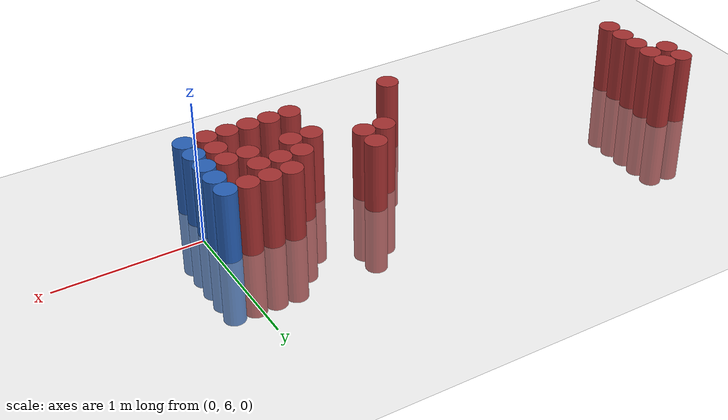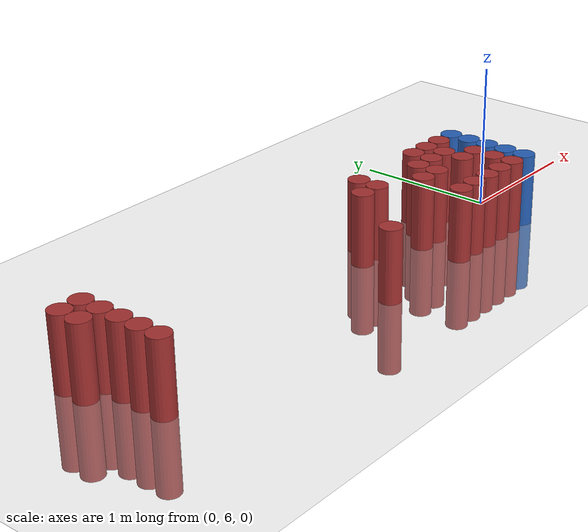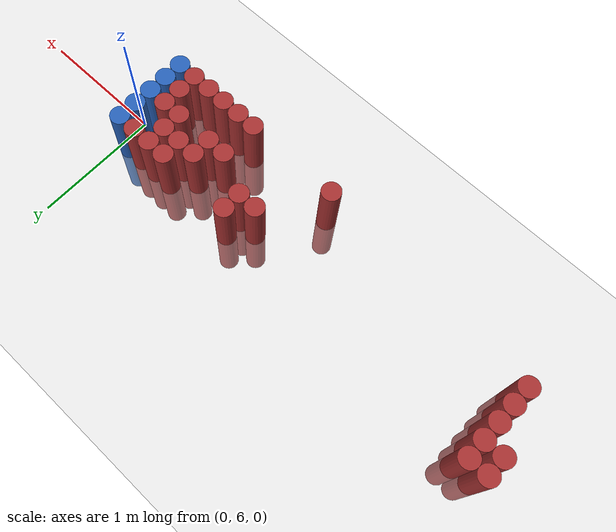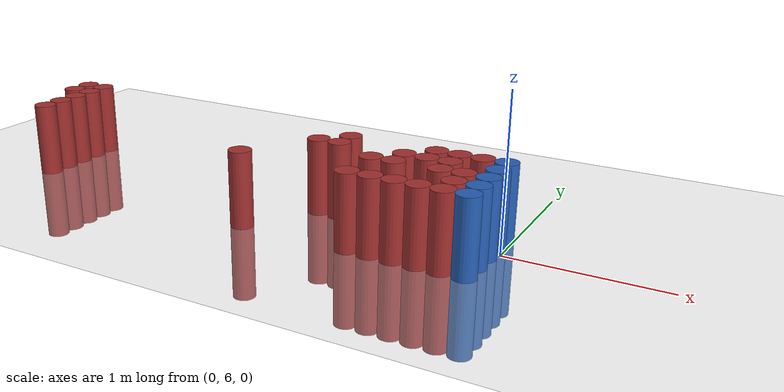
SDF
<sdf version="1.6">
 <world name="default">
  <model name="ground_plane">
   <static>1</static>
   <link name="link">
    <collision name="collision">
     <geometry><plane><normal>0 0 1</normal><size>100 100</size></plane></geometry>
     <surface><friction><ode><mu>100</mu><mu2>50</mu2></ode></friction></surface>
    </collision>
    <visual name="visual">
     <cast_shadows>0</cast_shadows>
     <geometry><plane><normal>0 0 1</normal><size>100 100</size></plane></geometry>
     <material>
      <script><uri>file://media/materials/scripts/gazebo.material</uri><name>Gazebo/Grey</name></script>
     </material>
    </visual>
   </link>
  </model>
  <model name="unit_cylinder_169">
   <static>1</static>
   <pose>-3.525000 6.225000 0.000000 0.000000 0.000000 0.000000</pose>
   <link name="link">
    <inertial>
     <mass>1</mass>
     <inertia><ixx>0.145833</ixx><ixy>0</ixy><ixz>0</ixz><iyy>0.145833</iyy><iyz>0</iyz><izz>0.125</izz></inertia>
    </inertial>
    <collision name="collision">
     <geometry><cylinder><radius>0.075000</radius><length>1</length></cylinder></geometry>
    </collision>
    <visual name="visual">
     <geometry><cylinder><radius>0.075000</radius><length>1</length></cylinder></geometry>
     <material>
      <ambient>0.648000 0.192000 0.192000 1</ambient>
      <diffuse>0.648000 0.192000 0.192000 1</diffuse>
     </material>
     <material>
      <script><name>Gazebo/Grey</name><uri>file://media/materials/scripts/gazebo.material</uri></script>
     </material>
    </visual>
    <sensor name="sensor_contact" type="contact"><contact><collision>collision</collision></contact></sensor>
   </link>
   <plugin filename="gz-sim-touchplugin-system" name="gz::sim::systems::TouchPlugin">
    <target>robot</target>
    <namespace>robot</namespace>
    <time>0.001</time>
    <enabled>true</enabled>
   </plugin>
  </model>
  <model name="unit_cylinder_170">
   <static>1</static>
   <pose>-3.525000 6.375000 0.000000 0.000000 0.000000 0.000000</pose>
   <link name="link">
    <inertial>
     <mass>1</mass>
     <inertia><ixx>0.145833</ixx><ixy>0</ixy><ixz>0</ixz><iyy>0.145833</iyy><iyz>0</iyz><izz>0.125</izz></inertia>
    </inertial>
    <collision name="collision">
     <geometry><cylinder><radius>0.075000</radius><length>1</length></cylinder></geometry>
    </collision>
    <visual name="visual">
     <geometry><cylinder><radius>0.075000</radius><length>1</length></cylinder></geometry>
     <material>
      <ambient>0.648000 0.192000 0.192000 1</ambient>
      <diffuse>0.648000 0.192000 0.192000 1</diffuse>
     </material>
     <material>
      <script><name>Gazebo/Grey</name><uri>file://media/materials/scripts/gazebo.material</uri></script>
     </material>
    </visual>
    <sensor name="sensor_contact" type="contact"><contact><collision>collision</collision></contact></sensor>
   </link>
   <plugin filename="gz-sim-touchplugin-system" name="gz::sim::systems::TouchPlugin">
    <target>robot</target>
    <namespace>robot</namespace>
    <time>0.001</time>
    <enabled>true</enabled>
   </plugin>
  </model>
  <model name="unit_cylinder_172">
   <static>1</static>
   <pose>-3.375000 5.775000 0.000000 0.000000 0.000000 0.000000</pose>
   <link name="link">
    <inertial>
     <mass>1</mass>
     <inertia><ixx>0.145833</ixx><ixy>0</ixy><ixz>0</ixz><iyy>0.145833</iyy><iyz>0</iyz><izz>0.125</izz></inertia>
    </inertial>
    <collision name="collision">
     <geometry><cylinder><radius>0.075000</radius><length>1</length></cylinder></geometry>
    </collision>
    <visual name="visual">
     <geometry><cylinder><radius>0.075000</radius><length>1</length></cylinder></geometry>
     <material>
      <ambient>0.648000 0.192000 0.192000 1</ambient>
      <diffuse>0.648000 0.192000 0.192000 1</diffuse>
     </material>
     <material>
      <script><name>Gazebo/Grey</name><uri>file://media/materials/scripts/gazebo.material</uri></script>
     </material>
    </visual>
    <sensor name="sensor_contact" type="contact"><contact><collision>collision</collision></contact></sensor>
   </link>
   <plugin filename="gz-sim-touchplugin-system" name="gz::sim::systems::TouchPlugin">
    <target>robot</target>
    <namespace>robot</namespace>
    <time>0.001</time>
    <enabled>true</enabled>
   </plugin>
  </model>
  <model name="unit_cylinder_173">
   <static>1</static>
   <pose>-3.375000 5.925000 0.000000 0.000000 0.000000 0.000000</pose>
   <link name="link">
    <inertial>
     <mass>1</mass>
     <inertia><ixx>0.145833</ixx><ixy>0</ixy><ixz>0</ixz><iyy>0.145833</iyy><iyz>0</iyz><izz>0.125</izz></inertia>
    </inertial>
    <collision name="collision">
     <geometry><cylinder><radius>0.075000</radius><length>1</length></cylinder></geometry>
    </collision>
    <visual name="visual">
     <geometry><cylinder><radius>0.075000</radius><length>1</length></cylinder></geometry>
     <material>
      <ambient>0.648000 0.192000 0.192000 1</ambient>
      <diffuse>0.648000 0.192000 0.192000 1</diffuse>
     </material>
     <material>
      <script><name>Gazebo/Grey</name><uri>file://media/materials/scripts/gazebo.material</uri></script>
     </material>
    </visual>
    <sensor name="sensor_contact" type="contact"><contact><collision>collision</collision></contact></sensor>
   </link>
   <plugin filename="gz-sim-touchplugin-system" name="gz::sim::systems::TouchPlugin">
    <target>robot</target>
    <namespace>robot</namespace>
    <time>0.001</time>
    <enabled>true</enabled>
   </plugin>
  </model>
  <model name="unit_cylinder_174">
   <static>1</static>
   <pose>-3.375000 6.075000 0.000000 0.000000 0.000000 0.000000</pose>
   <link name="link">
    <inertial>
     <mass>1</mass>
     <inertia><ixx>0.145833</ixx><ixy>0</ixy><ixz>0</ixz><iyy>0.145833</iyy><iyz>0</iyz><izz>0.125</izz></inertia>
    </inertial>
    <collision name="collision">
     <geometry><cylinder><radius>0.075000</radius><length>1</length></cylinder></geometry>
    </collision>
    <visual name="visual">
     <geometry><cylinder><radius>0.075000</radius><length>1</length></cylinder></geometry>
     <material>
      <ambient>0.648000 0.192000 0.192000 1</ambient>
      <diffuse>0.648000 0.192000 0.192000 1</diffuse>
     </material>
     <material>
      <script><name>Gazebo/Grey</name><uri>file://media/materials/scripts/gazebo.material</uri></script>
     </material>
    </visual>
    <sensor name="sensor_contact" type="contact"><contact><collision>collision</collision></contact></sensor>
   </link>
   <plugin filename="gz-sim-touchplugin-system" name="gz::sim::systems::TouchPlugin">
    <target>robot</target>
    <namespace>robot</namespace>
    <time>0.001</time>
    <enabled>true</enabled>
   </plugin>
  </model>
  <model name="unit_cylinder_175">
   <static>1</static>
   <pose>-3.375000 6.225000 0.000000 0.000000 0.000000 0.000000</pose>
   <link name="link">
    <inertial>
     <mass>1</mass>
     <inertia><ixx>0.145833</ixx><ixy>0</ixy><ixz>0</ixz><iyy>0.145833</iyy><iyz>0</iyz><izz>0.125</izz></inertia>
    </inertial>
    <collision name="collision">
     <geometry><cylinder><radius>0.075000</radius><length>1</length></cylinder></geometry>
    </collision>
    <visual name="visual">
     <geometry><cylinder><radius>0.075000</radius><length>1</length></cylinder></geometry>
     <material>
      <ambient>0.648000 0.192000 0.192000 1</ambient>
      <diffuse>0.648000 0.192000 0.192000 1</diffuse>
     </material>
     <material>
      <script><name>Gazebo/Grey</name><uri>file://media/materials/scripts/gazebo.material</uri></script>
     </material>
    </visual>
    <sensor name="sensor_contact" type="contact"><contact><collision>collision</collision></contact></sensor>
   </link>
   <plugin filename="gz-sim-touchplugin-system" name="gz::sim::systems::TouchPlugin">
    <target>robot</target>
    <namespace>robot</namespace>
    <time>0.001</time>
    <enabled>true</enabled>
   </plugin>
  </model>
  <model name="unit_cylinder_176">
   <static>1</static>
   <pose>-3.375000 6.375000 0.000000 0.000000 0.000000 0.000000</pose>
   <link name="link">
    <inertial>
     <mass>1</mass>
     <inertia><ixx>0.145833</ixx><ixy>0</ixy><ixz>0</ixz><iyy>0.145833</iyy><iyz>0</iyz><izz>0.125</izz></inertia>
    </inertial>
    <collision name="collision">
     <geometry><cylinder><radius>0.075000</radius><length>1</length></cylinder></geometry>
    </collision>
    <visual name="visual">
     <geometry><cylinder><radius>0.075000</radius><length>1</length></cylinder></geometry>
     <material>
      <ambient>0.648000 0.192000 0.192000 1</ambient>
      <diffuse>0.648000 0.192000 0.192000 1</diffuse>
     </material>
     <material>
      <script><name>Gazebo/Grey</name><uri>file://media/materials/scripts/gazebo.material</uri></script>
     </material>
    </visual>
    <sensor name="sensor_contact" type="contact"><contact><collision>collision</collision></contact></sensor>
   </link>
   <plugin filename="gz-sim-touchplugin-system" name="gz::sim::systems::TouchPlugin">
    <target>robot</target>
    <namespace>robot</namespace>
    <time>0.001</time>
    <enabled>true</enabled>
   </plugin>
  </model>
  <model name="unit_cylinder_219">
   <static>1</static>
   <pose>-1.575000 5.625000 0.000000 0.000000 0.000000 0.000000</pose>
   <link name="link">
    <inertial>
     <mass>1</mass>
     <inertia><ixx>0.145833</ixx><ixy>0</ixy><ixz>0</ixz><iyy>0.145833</iyy><iyz>0</iyz><izz>0.125</izz></inertia>
    </inertial>
    <collision name="collision">
     <geometry><cylinder><radius>0.075000</radius><length>1</length></cylinder></geometry>
    </collision>
    <visual name="visual">
     <geometry><cylinder><radius>0.075000</radius><length>1</length></cylinder></geometry>
     <material>
      <ambient>0.648000 0.192000 0.192000 1</ambient>
      <diffuse>0.648000 0.192000 0.192000 1</diffuse>
     </material>
     <material>
      <script><name>Gazebo/Grey</name><uri>file://media/materials/scripts/gazebo.material</uri></script>
     </material>
    </visual>
    <sensor name="sensor_contact" type="contact"><contact><collision>collision</collision></contact></sensor>
   </link>
   <plugin filename="gz-sim-touchplugin-system" name="gz::sim::systems::TouchPlugin">
    <target>robot</target>
    <namespace>robot</namespace>
    <time>0.001</time>
    <enabled>true</enabled>
   </plugin>
  </model>
  <model name="unit_cylinder_221">
   <static>1</static>
   <pose>-1.275000 6.075000 0.000000 0.000000 0.000000 0.000000</pose>
   <link name="link">
    <inertial>
     <mass>1</mass>
     <inertia><ixx>0.145833</ixx><ixy>0</ixy><ixz>0</ixz><iyy>0.145833</iyy><iyz>0</iyz><izz>0.125</izz></inertia>
    </inertial>
    <collision name="collision">
     <geometry><cylinder><radius>0.075000</radius><length>1</length></cylinder></geometry>
    </collision>
    <visual name="visual">
     <geometry><cylinder><radius>0.075000</radius><length>1</length></cylinder></geometry>
     <material>
      <ambient>0.648000 0.192000 0.192000 1</ambient>
      <diffuse>0.648000 0.192000 0.192000 1</diffuse>
     </material>
     <material>
      <script><name>Gazebo/Grey</name><uri>file://media/materials/scripts/gazebo.material</uri></script>
     </material>
    </visual>
    <sensor name="sensor_contact" type="contact"><contact><collision>collision</collision></contact></sensor>
   </link>
   <plugin filename="gz-sim-touchplugin-system" name="gz::sim::systems::TouchPlugin">
    <target>robot</target>
    <namespace>robot</namespace>
    <time>0.001</time>
    <enabled>true</enabled>
   </plugin>
  </model>
  <model name="unit_cylinder_222">
   <static>1</static>
   <pose>-1.125000 6.075000 0.000000 0.000000 0.000000 0.000000</pose>
   <link name="link">
    <inertial>
     <mass>1</mass>
     <inertia><ixx>0.145833</ixx><ixy>0</ixy><ixz>0</ixz><iyy>0.145833</iyy><iyz>0</iyz><izz>0.125</izz></inertia>
    </inertial>
    <collision name="collision">
     <geometry><cylinder><radius>0.075000</radius><length>1</length></cylinder></geometry>
    </collision>
    <visual name="visual">
     <geometry><cylinder><radius>0.075000</radius><length>1</length></cylinder></geometry>
     <material>
      <ambient>0.648000 0.192000 0.192000 1</ambient>
      <diffuse>0.648000 0.192000 0.192000 1</diffuse>
     </material>
     <material>
      <script><name>Gazebo/Grey</name><uri>file://media/materials/scripts/gazebo.material</uri></script>
     </material>
    </visual>
    <sensor name="sensor_contact" type="contact"><contact><collision>collision</collision></contact></sensor>
   </link>
   <plugin filename="gz-sim-touchplugin-system" name="gz::sim::systems::TouchPlugin">
    <target>robot</target>
    <namespace>robot</namespace>
    <time>0.001</time>
    <enabled>true</enabled>
   </plugin>
  </model>
  <model name="unit_cylinder_223">
   <static>1</static>
   <pose>-1.125000 6.225000 0.000000 0.000000 0.000000 0.000000</pose>
   <link name="link">
    <inertial>
     <mass>1</mass>
     <inertia><ixx>0.145833</ixx><ixy>0</ixy><ixz>0</ixz><iyy>0.145833</iyy><iyz>0</iyz><izz>0.125</izz></inertia>
    </inertial>
    <collision name="collision">
     <geometry><cylinder><radius>0.075000</radius><length>1</length></cylinder></geometry>
    </collision>
    <visual name="visual">
     <geometry><cylinder><radius>0.075000</radius><length>1</length></cylinder></geometry>
     <material>
      <ambient>0.648000 0.192000 0.192000 1</ambient>
      <diffuse>0.648000 0.192000 0.192000 1</diffuse>
     </material>
     <material>
      <script><name>Gazebo/Grey</name><uri>file://media/materials/scripts/gazebo.material</uri></script>
     </material>
    </visual>
    <sensor name="sensor_contact" type="contact"><contact><collision>collision</collision></contact></sensor>
   </link>
   <plugin filename="gz-sim-touchplugin-system" name="gz::sim::systems::TouchPlugin">
    <target>robot</target>
    <namespace>robot</namespace>
    <time>0.001</time>
    <enabled>true</enabled>
   </plugin>
  </model>
  <model name="unit_cylinder_235">
   <static>1</static>
   <pose>-0.825000 5.625000 0.000000 0.000000 0.000000 0.000000</pose>
   <link name="link">
    <inertial>
     <mass>1</mass>
     <inertia><ixx>0.145833</ixx><ixy>0</ixy><ixz>0</ixz><iyy>0.145833</iyy><iyz>0</iyz><izz>0.125</izz></inertia>
    </inertial>
    <collision name="collision">
     <geometry><cylinder><radius>0.075000</radius><length>1</length></cylinder></geometry>
    </collision>
    <visual name="visual">
     <geometry><cylinder><radius>0.075000</radius><length>1</length></cylinder></geometry>
     <material>
      <ambient>0.648000 0.192000 0.192000 1</ambient>
      <diffuse>0.648000 0.192000 0.192000 1</diffuse>
     </material>
     <material>
      <script><name>Gazebo/Grey</name><uri>file://media/materials/scripts/gazebo.material</uri></script>
     </material>
    </visual>
    <sensor name="sensor_contact" type="contact"><contact><collision>collision</collision></contact></sensor>
   </link>
   <plugin filename="gz-sim-touchplugin-system" name="gz::sim::systems::TouchPlugin">
    <target>robot</target>
    <namespace>robot</namespace>
    <time>0.001</time>
    <enabled>true</enabled>
   </plugin>
  </model>
  <model name="unit_cylinder_236">
   <static>1</static>
   <pose>-0.825000 5.925000 0.000000 0.000000 0.000000 0.000000</pose>
   <link name="link">
    <inertial>
     <mass>1</mass>
     <inertia><ixx>0.145833</ixx><ixy>0</ixy><ixz>0</ixz><iyy>0.145833</iyy><iyz>0</iyz><izz>0.125</izz></inertia>
    </inertial>
    <collision name="collision">
     <geometry><cylinder><radius>0.075000</radius><length>1</length></cylinder></geometry>
    </collision>
    <visual name="visual">
     <geometry><cylinder><radius>0.075000</radius><length>1</length></cylinder></geometry>
     <material>
      <ambient>0.648000 0.192000 0.192000 1</ambient>
      <diffuse>0.648000 0.192000 0.192000 1</diffuse>
     </material>
     <material>
      <script><name>Gazebo/Grey</name><uri>file://media/materials/scripts/gazebo.material</uri></script>
     </material>
    </visual>
    <sensor name="sensor_contact" type="contact"><contact><collision>collision</collision></contact></sensor>
   </link>
   <plugin filename="gz-sim-touchplugin-system" name="gz::sim::systems::TouchPlugin">
    <target>robot</target>
    <namespace>robot</namespace>
    <time>0.001</time>
    <enabled>true</enabled>
   </plugin>
  </model>
  <model name="unit_cylinder_246">
   <static>1</static>
   <pose>-0.675000 5.625000 0.000000 0.000000 0.000000 0.000000</pose>
   <link name="link">
    <inertial>
     <mass>1</mass>
     <inertia><ixx>0.145833</ixx><ixy>0</ixy><ixz>0</ixz><iyy>0.145833</iyy><iyz>0</iyz><izz>0.125</izz></inertia>
    </inertial>
    <collision name="collision">
     <geometry><cylinder><radius>0.075000</radius><length>1</length></cylinder></geometry>
    </collision>
    <visual name="visual">
     <geometry><cylinder><radius>0.075000</radius><length>1</length></cylinder></geometry>
     <material>
      <ambient>0.648000 0.192000 0.192000 1</ambient>
      <diffuse>0.648000 0.192000 0.192000 1</diffuse>
     </material>
     <material>
      <script><name>Gazebo/Grey</name><uri>file://media/materials/scripts/gazebo.material</uri></script>
     </material>
    </visual>
    <sensor name="sensor_contact" type="contact"><contact><collision>collision</collision></contact></sensor>
   </link>
   <plugin filename="gz-sim-touchplugin-system" name="gz::sim::systems::TouchPlugin">
    <target>robot</target>
    <namespace>robot</namespace>
    <time>0.001</time>
    <enabled>true</enabled>
   </plugin>
  </model>
  <model name="unit_cylinder_247">
   <static>1</static>
   <pose>-0.675000 5.925000 0.000000 0.000000 0.000000 0.000000</pose>
   <link name="link">
    <inertial>
     <mass>1</mass>
     <inertia><ixx>0.145833</ixx><ixy>0</ixy><ixz>0</ixz><iyy>0.145833</iyy><iyz>0</iyz><izz>0.125</izz></inertia>
    </inertial>
    <collision name="collision">
     <geometry><cylinder><radius>0.075000</radius><length>1</length></cylinder></geometry>
    </collision>
    <visual name="visual">
     <geometry><cylinder><radius>0.075000</radius><length>1</length></cylinder></geometry>
     <material>
      <ambient>0.648000 0.192000 0.192000 1</ambient>
      <diffuse>0.648000 0.192000 0.192000 1</diffuse>
     </material>
     <material>
      <script><name>Gazebo/Grey</name><uri>file://media/materials/scripts/gazebo.material</uri></script>
     </material>
    </visual>
    <sensor name="sensor_contact" type="contact"><contact><collision>collision</collision></contact></sensor>
   </link>
   <plugin filename="gz-sim-touchplugin-system" name="gz::sim::systems::TouchPlugin">
    <target>robot</target>
    <namespace>robot</namespace>
    <time>0.001</time>
    <enabled>true</enabled>
   </plugin>
  </model>
  <model name="unit_cylinder_248">
   <static>1</static>
   <pose>-0.675000 6.075000 0.000000 0.000000 0.000000 0.000000</pose>
   <link name="link">
    <inertial>
     <mass>1</mass>
     <inertia><ixx>0.145833</ixx><ixy>0</ixy><ixz>0</ixz><iyy>0.145833</iyy><iyz>0</iyz><izz>0.125</izz></inertia>
    </inertial>
    <collision name="collision">
     <geometry><cylinder><radius>0.075000</radius><length>1</length></cylinder></geometry>
    </collision>
    <visual name="visual">
     <geometry><cylinder><radius>0.075000</radius><length>1</length></cylinder></geometry>
     <material>
      <ambient>0.648000 0.192000 0.192000 1</ambient>
      <diffuse>0.648000 0.192000 0.192000 1</diffuse>
     </material>
     <material>
      <script><name>Gazebo/Grey</name><uri>file://media/materials/scripts/gazebo.material</uri></script>
     </material>
    </visual>
    <sensor name="sensor_contact" type="contact"><contact><collision>collision</collision></contact></sensor>
   </link>
   <plugin filename="gz-sim-touchplugin-system" name="gz::sim::systems::TouchPlugin">
    <target>robot</target>
    <namespace>robot</namespace>
    <time>0.001</time>
    <enabled>true</enabled>
   </plugin>
  </model>
  <model name="unit_cylinder_258">
   <static>1</static>
   <pose>-0.525000 5.625000 0.000000 0.000000 0.000000 0.000000</pose>
   <link name="link">
    <inertial>
     <mass>1</mass>
     <inertia><ixx>0.145833</ixx><ixy>0</ixy><ixz>0</ixz><iyy>0.145833</iyy><iyz>0</iyz><izz>0.125</izz></inertia>
    </inertial>
    <collision name="collision">
     <geometry><cylinder><radius>0.075000</radius><length>1</length></cylinder></geometry>
    </collision>
    <visual name="visual">
     <geometry><cylinder><radius>0.075000</radius><length>1</length></cylinder></geometry>
     <material>
      <ambient>0.648000 0.192000 0.192000 1</ambient>
      <diffuse>0.648000 0.192000 0.192000 1</diffuse>
     </material>
     <material>
      <script><name>Gazebo/Grey</name><uri>file://media/materials/scripts/gazebo.material</uri></script>
     </material>
    </visual>
    <sensor name="sensor_contact" type="contact"><contact><collision>collision</collision></contact></sensor>
   </link>
   <plugin filename="gz-sim-touchplugin-system" name="gz::sim::systems::TouchPlugin">
    <target>robot</target>
    <namespace>robot</namespace>
    <time>0.001</time>
    <enabled>true</enabled>
   </plugin>
  </model>
  <model name="unit_cylinder_259">
   <static>1</static>
   <pose>-0.525000 6.075000 0.000000 0.000000 0.000000 0.000000</pose>
   <link name="link">
    <inertial>
     <mass>1</mass>
     <inertia><ixx>0.145833</ixx><ixy>0</ixy><ixz>0</ixz><iyy>0.145833</iyy><iyz>0</iyz><izz>0.125</izz></inertia>
    </inertial>
    <collision name="collision">
     <geometry><cylinder><radius>0.075000</radius><length>1</length></cylinder></geometry>
    </collision>
    <visual name="visual">
     <geometry><cylinder><radius>0.075000</radius><length>1</length></cylinder></geometry>
     <material>
      <ambient>0.648000 0.192000 0.192000 1</ambient>
      <diffuse>0.648000 0.192000 0.192000 1</diffuse>
     </material>
     <material>
      <script><name>Gazebo/Grey</name><uri>file://media/materials/scripts/gazebo.material</uri></script>
     </material>
    </visual>
    <sensor name="sensor_contact" type="contact"><contact><collision>collision</collision></contact></sensor>
   </link>
   <plugin filename="gz-sim-touchplugin-system" name="gz::sim::systems::TouchPlugin">
    <target>robot</target>
    <namespace>robot</namespace>
    <time>0.001</time>
    <enabled>true</enabled>
   </plugin>
  </model>
  <model name="unit_cylinder_260">
   <static>1</static>
   <pose>-0.525000 6.225000 0.000000 0.000000 0.000000 0.000000</pose>
   <link name="link">
    <inertial>
     <mass>1</mass>
     <inertia><ixx>0.145833</ixx><ixy>0</ixy><ixz>0</ixz><iyy>0.145833</iyy><iyz>0</iyz><izz>0.125</izz></inertia>
    </inertial>
    <collision name="collision">
     <geometry><cylinder><radius>0.075000</radius><length>1</length></cylinder></geometry>
    </collision>
    <visual name="visual">
     <geometry><cylinder><radius>0.075000</radius><length>1</length></cylinder></geometry>
     <material>
      <ambient>0.648000 0.192000 0.192000 1</ambient>
      <diffuse>0.648000 0.192000 0.192000 1</diffuse>
     </material>
     <material>
      <script><name>Gazebo/Grey</name><uri>file://media/materials/scripts/gazebo.material</uri></script>
     </material>
    </visual>
    <sensor name="sensor_contact" type="contact"><contact><collision>collision</collision></contact></sensor>
   </link>
   <plugin filename="gz-sim-touchplugin-system" name="gz::sim::systems::TouchPlugin">
    <target>robot</target>
    <namespace>robot</namespace>
    <time>0.001</time>
    <enabled>true</enabled>
   </plugin>
  </model>
  <model name="unit_cylinder_267">
   <static>1</static>
   <pose>-0.375000 5.625000 0.000000 0.000000 0.000000 0.000000</pose>
   <link name="link">
    <inertial>
     <mass>1</mass>
     <inertia><ixx>0.145833</ixx><ixy>0</ixy><ixz>0</ixz><iyy>0.145833</iyy><iyz>0</iyz><izz>0.125</izz></inertia>
    </inertial>
    <collision name="collision">
     <geometry><cylinder><radius>0.075000</radius><length>1</length></cylinder></geometry>
    </collision>
    <visual name="visual">
     <geometry><cylinder><radius>0.075000</radius><length>1</length></cylinder></geometry>
     <material>
      <ambient>0.648000 0.192000 0.192000 1</ambient>
      <diffuse>0.648000 0.192000 0.192000 1</diffuse>
     </material>
     <material>
      <script><name>Gazebo/Grey</name><uri>file://media/materials/scripts/gazebo.material</uri></script>
     </material>
    </visual>
    <sensor name="sensor_contact" type="contact"><contact><collision>collision</collision></contact></sensor>
   </link>
   <plugin filename="gz-sim-touchplugin-system" name="gz::sim::systems::TouchPlugin">
    <target>robot</target>
    <namespace>robot</namespace>
    <time>0.001</time>
    <enabled>true</enabled>
   </plugin>
  </model>
  <model name="unit_cylinder_268">
   <static>1</static>
   <pose>-0.375000 5.925000 0.000000 0.000000 0.000000 0.000000</pose>
   <link name="link">
    <inertial>
     <mass>1</mass>
     <inertia><ixx>0.145833</ixx><ixy>0</ixy><ixz>0</ixz><iyy>0.145833</iyy><iyz>0</iyz><izz>0.125</izz></inertia>
    </inertial>
    <collision name="collision">
     <geometry><cylinder><radius>0.075000</radius><length>1</length></cylinder></geometry>
    </collision>
    <visual name="visual">
     <geometry><cylinder><radius>0.075000</radius><length>1</length></cylinder></geometry>
     <material>
      <ambient>0.648000 0.192000 0.192000 1</ambient>
      <diffuse>0.648000 0.192000 0.192000 1</diffuse>
     </material>
     <material>
      <script><name>Gazebo/Grey</name><uri>file://media/materials/scripts/gazebo.material</uri></script>
     </material>
    </visual>
    <sensor name="sensor_contact" type="contact"><contact><collision>collision</collision></contact></sensor>
   </link>
   <plugin filename="gz-sim-touchplugin-system" name="gz::sim::systems::TouchPlugin">
    <target>robot</target>
    <namespace>robot</namespace>
    <time>0.001</time>
    <enabled>true</enabled>
   </plugin>
  </model>
  <model name="unit_cylinder_269">
   <static>1</static>
   <pose>-0.375000 6.075000 0.000000 0.000000 0.000000 0.000000</pose>
   <link name="link">
    <inertial>
     <mass>1</mass>
     <inertia><ixx>0.145833</ixx><ixy>0</ixy><ixz>0</ixz><iyy>0.145833</iyy><iyz>0</iyz><izz>0.125</izz></inertia>
    </inertial>
    <collision name="collision">
     <geometry><cylinder><radius>0.075000</radius><length>1</length></cylinder></geometry>
    </collision>
    <visual name="visual">
     <geometry><cylinder><radius>0.075000</radius><length>1</length></cylinder></geometry>
     <material>
      <ambient>0.648000 0.192000 0.192000 1</ambient>
      <diffuse>0.648000 0.192000 0.192000 1</diffuse>
     </material>
     <material>
      <script><name>Gazebo/Grey</name><uri>file://media/materials/scripts/gazebo.material</uri></script>
     </material>
    </visual>
    <sensor name="sensor_contact" type="contact"><contact><collision>collision</collision></contact></sensor>
   </link>
   <plugin filename="gz-sim-touchplugin-system" name="gz::sim::systems::TouchPlugin">
    <target>robot</target>
    <namespace>robot</namespace>
    <time>0.001</time>
    <enabled>true</enabled>
   </plugin>
  </model>
  <model name="unit_cylinder_270">
   <static>1</static>
   <pose>-0.375000 6.225000 0.000000 0.000000 0.000000 0.000000</pose>
   <link name="link">
    <inertial>
     <mass>1</mass>
     <inertia><ixx>0.145833</ixx><ixy>0</ixy><ixz>0</ixz><iyy>0.145833</iyy><iyz>0</iyz><izz>0.125</izz></inertia>
    </inertial>
    <collision name="collision">
     <geometry><cylinder><radius>0.075000</radius><length>1</length></cylinder></geometry>
    </collision>
    <visual name="visual">
     <geometry><cylinder><radius>0.075000</radius><length>1</length></cylinder></geometry>
     <material>
      <ambient>0.648000 0.192000 0.192000 1</ambient>
      <diffuse>0.648000 0.192000 0.192000 1</diffuse>
     </material>
     <material>
      <script><name>Gazebo/Grey</name><uri>file://media/materials/scripts/gazebo.material</uri></script>
     </material>
    </visual>
    <sensor name="sensor_contact" type="contact"><contact><collision>collision</collision></contact></sensor>
   </link>
   <plugin filename="gz-sim-touchplugin-system" name="gz::sim::systems::TouchPlugin">
    <target>robot</target>
    <namespace>robot</namespace>
    <time>0.001</time>
    <enabled>true</enabled>
   </plugin>
  </model>
  <model name="unit_cylinder_283">
   <static>1</static>
   <pose>-0.225000 5.625000 0.000000 0.000000 0.000000 0.000000</pose>
   <link name="link">
    <inertial>
     <mass>1</mass>
     <inertia><ixx>0.145833</ixx><ixy>0</ixy><ixz>0</ixz><iyy>0.145833</iyy><iyz>0</iyz><izz>0.125</izz></inertia>
    </inertial>
    <collision name="collision">
     <geometry><cylinder><radius>0.075000</radius><length>1</length></cylinder></geometry>
    </collision>
    <visual name="visual">
     <geometry><cylinder><radius>0.075000</radius><length>1</length></cylinder></geometry>
     <material>
      <ambient>0.648000 0.192000 0.192000 1</ambient>
      <diffuse>0.648000 0.192000 0.192000 1</diffuse>
     </material>
     <material>
      <script><name>Gazebo/Grey</name><uri>file://media/materials/scripts/gazebo.material</uri></script>
     </material>
    </visual>
    <sensor name="sensor_contact" type="contact"><contact><collision>collision</collision></contact></sensor>
   </link>
   <plugin filename="gz-sim-touchplugin-system" name="gz::sim::systems::TouchPlugin">
    <target>robot</target>
    <namespace>robot</namespace>
    <time>0.001</time>
    <enabled>true</enabled>
   </plugin>
  </model>
  <model name="unit_cylinder_284">
   <static>1</static>
   <pose>-0.225000 5.775000 0.000000 0.000000 0.000000 0.000000</pose>
   <link name="link">
    <inertial>
     <mass>1</mass>
     <inertia><ixx>0.145833</ixx><ixy>0</ixy><ixz>0</ixz><iyy>0.145833</iyy><iyz>0</iyz><izz>0.125</izz></inertia>
    </inertial>
    <collision name="collision">
     <geometry><cylinder><radius>0.075000</radius><length>1</length></cylinder></geometry>
    </collision>
    <visual name="visual">
     <geometry><cylinder><radius>0.075000</radius><length>1</length></cylinder></geometry>
     <material>
      <ambient>0.648000 0.192000 0.192000 1</ambient>
      <diffuse>0.648000 0.192000 0.192000 1</diffuse>
     </material>
     <material>
      <script><name>Gazebo/Grey</name><uri>file://media/materials/scripts/gazebo.material</uri></script>
     </material>
    </visual>
    <sensor name="sensor_contact" type="contact"><contact><collision>collision</collision></contact></sensor>
   </link>
   <plugin filename="gz-sim-touchplugin-system" name="gz::sim::systems::TouchPlugin">
    <target>robot</target>
    <namespace>robot</namespace>
    <time>0.001</time>
    <enabled>true</enabled>
   </plugin>
  </model>
  <model name="unit_cylinder_285">
   <static>1</static>
   <pose>-0.225000 5.925000 0.000000 0.000000 0.000000 0.000000</pose>
   <link name="link">
    <inertial>
     <mass>1</mass>
     <inertia><ixx>0.145833</ixx><ixy>0</ixy><ixz>0</ixz><iyy>0.145833</iyy><iyz>0</iyz><izz>0.125</izz></inertia>
    </inertial>
    <collision name="collision">
     <geometry><cylinder><radius>0.075000</radius><length>1</length></cylinder></geometry>
    </collision>
    <visual name="visual">
     <geometry><cylinder><radius>0.075000</radius><length>1</length></cylinder></geometry>
     <material>
      <ambient>0.648000 0.192000 0.192000 1</ambient>
      <diffuse>0.648000 0.192000 0.192000 1</diffuse>
     </material>
     <material>
      <script><name>Gazebo/Grey</name><uri>file://media/materials/scripts/gazebo.material</uri></script>
     </material>
    </visual>
    <sensor name="sensor_contact" type="contact"><contact><collision>collision</collision></contact></sensor>
   </link>
   <plugin filename="gz-sim-touchplugin-system" name="gz::sim::systems::TouchPlugin">
    <target>robot</target>
    <namespace>robot</namespace>
    <time>0.001</time>
    <enabled>true</enabled>
   </plugin>
  </model>
  <model name="unit_cylinder_286">
   <static>1</static>
   <pose>-0.225000 6.225000 0.000000 0.000000 0.000000 0.000000</pose>
   <link name="link">
    <inertial>
     <mass>1</mass>
     <inertia><ixx>0.145833</ixx><ixy>0</ixy><ixz>0</ixz><iyy>0.145833</iyy><iyz>0</iyz><izz>0.125</izz></inertia>
    </inertial>
    <collision name="collision">
     <geometry><cylinder><radius>0.075000</radius><length>1</length></cylinder></geometry>
    </collision>
    <visual name="visual">
     <geometry><cylinder><radius>0.075000</radius><length>1</length></cylinder></geometry>
     <material>
      <ambient>0.648000 0.192000 0.192000 1</ambient>
      <diffuse>0.648000 0.192000 0.192000 1</diffuse>
     </material>
     <material>
      <script><name>Gazebo/Grey</name><uri>file://media/materials/scripts/gazebo.material</uri></script>
     </material>
    </visual>
    <sensor name="sensor_contact" type="contact"><contact><collision>collision</collision></contact></sensor>
   </link>
   <plugin filename="gz-sim-touchplugin-system" name="gz::sim::systems::TouchPlugin">
    <target>robot</target>
    <namespace>robot</namespace>
    <time>0.001</time>
    <enabled>true</enabled>
   </plugin>
  </model>
  <model name="unit_cylinder_298">
   <static>1</static>
   <pose>-0.075000 5.625000 0.000000 0.000000 0.000000 0.000000</pose>
   <link name="link">
    <inertial>
     <mass>1</mass>
     <inertia><ixx>0.145833</ixx><ixy>0</ixy><ixz>0</ixz><iyy>0.145833</iyy><iyz>0</iyz><izz>0.125</izz></inertia>
    </inertial>
    <collision name="collision">
     <geometry><cylinder><radius>0.075000</radius><length>1</length></cylinder></geometry>
    </collision>
    <visual name="visual">
     <geometry><cylinder><radius>0.075000</radius><length>1</length></cylinder></geometry>
     <material>
      <ambient>0.152000 0.379000 0.720000 1</ambient>
      <diffuse>0.152000 0.379000 0.720000 1</diffuse>
     </material>
     <material>
      <script><name>Gazebo/Grey</name><uri>file://media/materials/scripts/gazebo.material</uri></script>
     </material>
    </visual>
    <sensor name="sensor_contact" type="contact"><contact><collision>collision</collision></contact></sensor>
   </link>
   <plugin filename="gz-sim-touchplugin-system" name="gz::sim::systems::TouchPlugin">
    <target>robot</target>
    <namespace>robot</namespace>
    <time>0.001</time>
    <enabled>true</enabled>
   </plugin>
  </model>
  <model name="unit_cylinder_299">
   <static>1</static>
   <pose>-0.075000 5.775000 0.000000 0.000000 0.000000 0.000000</pose>
   <link name="link">
    <inertial>
     <mass>1</mass>
     <inertia><ixx>0.145833</ixx><ixy>0</ixy><ixz>0</ixz><iyy>0.145833</iyy><iyz>0</iyz><izz>0.125</izz></inertia>
    </inertial>
    <collision name="collision">
     <geometry><cylinder><radius>0.075000</radius><length>1</length></cylinder></geometry>
    </collision>
    <visual name="visual">
     <geometry><cylinder><radius>0.075000</radius><length>1</length></cylinder></geometry>
     <material>
      <ambient>0.152000 0.379000 0.720000 1</ambient>
      <diffuse>0.152000 0.379000 0.720000 1</diffuse>
     </material>
     <material>
      <script><name>Gazebo/Grey</name><uri>file://media/materials/scripts/gazebo.material</uri></script>
     </material>
    </visual>
    <sensor name="sensor_contact" type="contact"><contact><collision>collision</collision></contact></sensor>
   </link>
   <plugin filename="gz-sim-touchplugin-system" name="gz::sim::systems::TouchPlugin">
    <target>robot</target>
    <namespace>robot</namespace>
    <time>0.001</time>
    <enabled>true</enabled>
   </plugin>
  </model>
  <model name="unit_cylinder_300">
   <static>1</static>
   <pose>-0.075000 5.925000 0.000000 0.000000 0.000000 0.000000</pose>
   <link name="link">
    <inertial>
     <mass>1</mass>
     <inertia><ixx>0.145833</ixx><ixy>0</ixy><ixz>0</ixz><iyy>0.145833</iyy><iyz>0</iyz><izz>0.125</izz></inertia>
    </inertial>
    <collision name="collision">
     <geometry><cylinder><radius>0.075000</radius><length>1</length></cylinder></geometry>
    </collision>
    <visual name="visual">
     <geometry><cylinder><radius>0.075000</radius><length>1</length></cylinder></geometry>
     <material>
      <ambient>0.152000 0.379000 0.720000 1</ambient>
      <diffuse>0.152000 0.379000 0.720000 1</diffuse>
     </material>
     <material>
      <script><name>Gazebo/Grey</name><uri>file://media/materials/scripts/gazebo.material</uri></script>
     </material>
    </visual>
    <sensor name="sensor_contact" type="contact"><contact><collision>collision</collision></contact></sensor>
   </link>
   <plugin filename="gz-sim-touchplugin-system" name="gz::sim::systems::TouchPlugin">
    <target>robot</target>
    <namespace>robot</namespace>
    <time>0.001</time>
    <enabled>true</enabled>
   </plugin>
  </model>
  <model name="unit_cylinder_301">
   <static>1</static>
   <pose>-0.075000 6.075000 0.000000 0.000000 0.000000 0.000000</pose>
   <link name="link">
    <inertial>
     <mass>1</mass>
     <inertia><ixx>0.145833</ixx><ixy>0</ixy><ixz>0</ixz><iyy>0.145833</iyy><iyz>0</iyz><izz>0.125</izz></inertia>
    </inertial>
    <collision name="collision">
     <geometry><cylinder><radius>0.075000</radius><length>1</length></cylinder></geometry>
    </collision>
    <visual name="visual">
     <geometry><cylinder><radius>0.075000</radius><length>1</length></cylinder></geometry>
     <material>
      <ambient>0.152000 0.379000 0.720000 1</ambient>
      <diffuse>0.152000 0.379000 0.720000 1</diffuse>
     </material>
     <material>
      <script><name>Gazebo/Grey</name><uri>file://media/materials/scripts/gazebo.material</uri></script>
     </material>
    </visual>
    <sensor name="sensor_contact" type="contact"><contact><collision>collision</collision></contact></sensor>
   </link>
   <plugin filename="gz-sim-touchplugin-system" name="gz::sim::systems::TouchPlugin">
    <target>robot</target>
    <namespace>robot</namespace>
    <time>0.001</time>
    <enabled>true</enabled>
   </plugin>
  </model>
  <model name="unit_cylinder_302">
   <static>1</static>
   <pose>-0.075000 6.225000 0.000000 0.000000 0.000000 0.000000</pose>
   <link name="link">
    <inertial>
     <mass>1</mass>
     <inertia><ixx>0.145833</ixx><ixy>0</ixy><ixz>0</ixz><iyy>0.145833</iyy><iyz>0</iyz><izz>0.125</izz></inertia>
    </inertial>
    <collision name="collision">
     <geometry><cylinder><radius>0.075000</radius><length>1</length></cylinder></geometry>
    </collision>
    <visual name="visual">
     <geometry><cylinder><radius>0.075000</radius><length>1</length></cylinder></geometry>
     <material>
      <ambient>0.152000 0.379000 0.720000 1</ambient>
      <diffuse>0.152000 0.379000 0.720000 1</diffuse>
     </material>
     <material>
      <script><name>Gazebo/Grey</name><uri>file://media/materials/scripts/gazebo.material</uri></script>
     </material>
    </visual>
    <sensor name="sensor_contact" type="contact"><contact><collision>collision</collision></contact></sensor>
   </link>
   <plugin filename="gz-sim-touchplugin-system" name="gz::sim::systems::TouchPlugin">
    <target>robot</target>
    <namespace>robot</namespace>
    <time>0.001</time>
    <enabled>true</enabled>
   </plugin>
  </model>
 </world>
</sdf>
